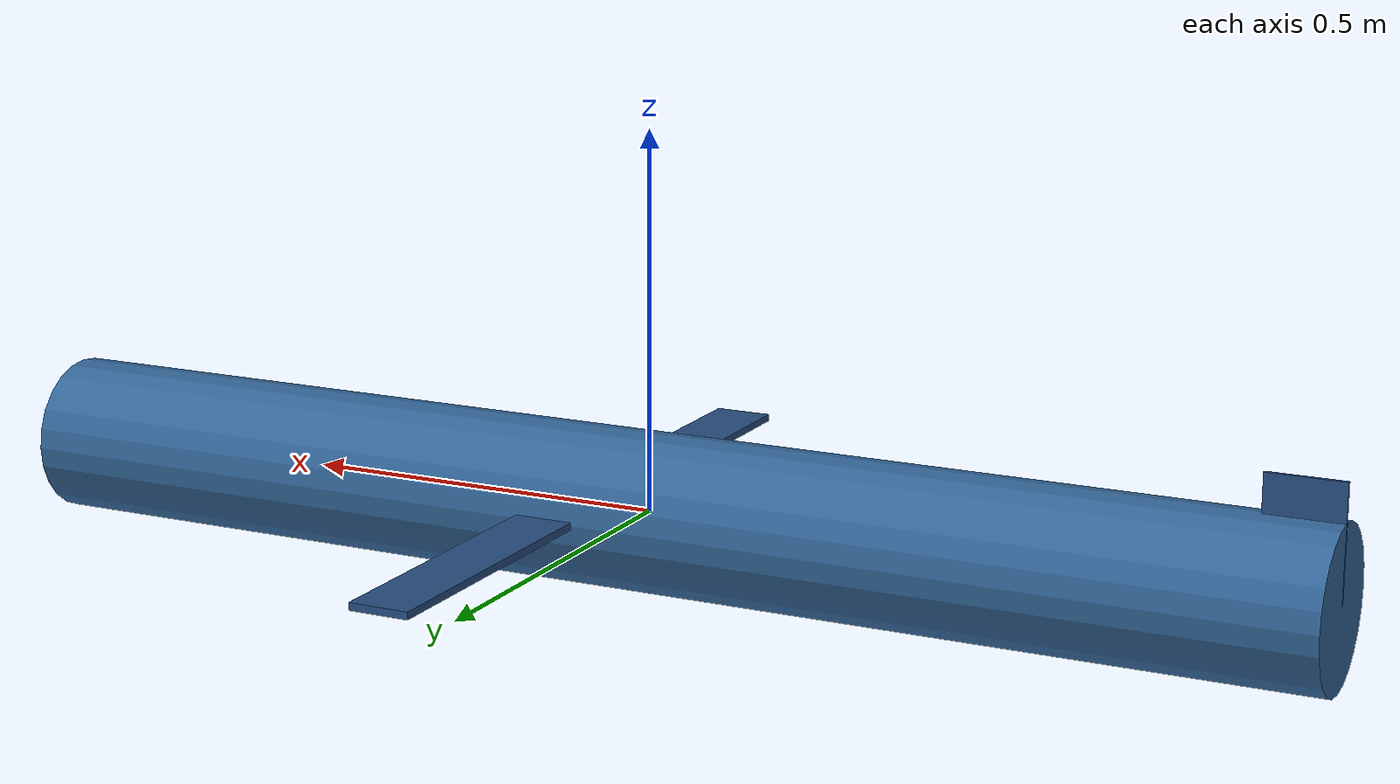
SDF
<?xml version="1.0" ?>
<sdf version="1.6">
<model name="tuba_glider">

  <pose>0 0 0 0 0 0</pose>
  <self_collide>false</self_collide>
  <static>false</static>

  <link name="hull_link">
    <pose>0 0 0 0 0 0</pose>

    <inertial>
      <!-- CoG 3 cm below geometric centre: CoB (at link origin) is above CoG,
           giving a restoring moment that resists both roll and pitch at rest. -->
      <pose>0 0 -0.03 0 0 0</pose>
      <mass>59.9</mass>
      <inertia>
        <ixx>16.3</ixx>
        <ixy>0.0</ixy>
        <ixz>0.0</ixz>
        <iyy>16.3</iyy>
        <iyz>0.0</iyz>
        <izz>0.330</izz>
      </inertia>
    </inertial>

    <!-- Visual hull: cylinder rotated 90° about Y so its length lies along X -->
    <visual name="hull_visual">
      <pose>0 0 0 0 1.5707963 0</pose>
      <geometry>
        <cylinder>
          <radius>0.105</radius>
          <length>1.8</length>
        </cylinder>
      </geometry>
      <material>
        <ambient>0.2 0.4 0.6 1.0</ambient>
        <diffuse>0.2 0.4 0.6 1.0</diffuse>
        <specular>0.3 0.3 0.3 1.0</specular>
      </material>
    </visual>

    <!-- Collision: must match visual geometry closely so that the
         BuoyancyEngine plugin computes the correct submerged volume. -->
    <collision name="hull_collision">
      <pose>0 0 0 0 1.5707963 0</pose>
      <geometry>
        <cylinder>
          <radius>0.105</radius>
          <length>1.8</length>
        </cylinder>
      </geometry>
    </collision>

    <!-- === IMU SENSOR ===
         Publishes gz.msgs.IMU:
           orientation (quaternion w.r.t. world), angular_velocity (rad/s),
           linear_acceleration (m/s², body frame)
    -->
    <sensor name="imu_sensor" type="imu">
      <always_on>true</always_on>
      <update_rate>100</update_rate>
      <topic>/model/tuba_glider/imu</topic>
      <imu>
        <angular_velocity>
          <x><noise type="gaussian"><mean>0</mean><stddev>0.0002</stddev></noise></x>
          <y><noise type="gaussian"><mean>0</mean><stddev>0.0002</stddev></noise></y>
          <z><noise type="gaussian"><mean>0</mean><stddev>0.0002</stddev></noise></z>
        </angular_velocity>
        <linear_acceleration>
          <x><noise type="gaussian"><mean>0</mean><stddev>0.017</stddev></noise></x>
          <y><noise type="gaussian"><mean>0</mean><stddev>0.017</stddev></noise></y>
          <z><noise type="gaussian"><mean>0</mean><stddev>0.017</stddev></noise></z>
        </linear_acceleration>
      </imu>
    </sensor>

    <!-- === ALTIMETER SENSOR for depth ===
         vertical_position = world z coordinate.
         depth_m = -vertical_position  (bridge applies this conversion).
    -->
    <sensor name="altimeter_sensor" type="altimeter">
      <always_on>true</always_on>
      <update_rate>10</update_rate>
      <topic>/model/tuba_glider/altimeter</topic>
      <altimeter>
        <vertical_position>
          <noise type="gaussian"><mean>0</mean><stddev>0.02</stddev></noise>
        </vertical_position>
        <vertical_velocity>
          <noise type="gaussian"><mean>0</mean><stddev>0.01</stddev></noise>
        </vertical_velocity>
      </altimeter>
    </sensor>

  </link>

  <link name="wing_port_link">
    <pose>0.1 0.305 0 0 0 0</pose>
    <inertial>
      <mass>0.2</mass>
      <!-- Box 0.08×0.40×0.01 m: Ixx=(1/12)*m*(y²+z²), etc. -->
      <inertia>
        <ixx>0.000267</ixx><ixy>0</ixy><ixz>0</ixz>
        <iyy>0.001068</iyy><iyz>0</iyz>
        <izz>0.001333</izz>
      </inertia>
    </inertial>
    <visual name="wing_port_visual">
      <geometry>
        <box><size>0.08 0.40 0.01</size></box>
      </geometry>
      <material>
        <ambient>0.15 0.3 0.5 1</ambient>
        <diffuse>0.15 0.3 0.5 1</diffuse>
        <specular>0.1 0.1 0.1 1</specular>
      </material>
    </visual>
    <collision name="wing_port_collision">
      <geometry>
        <box><size>0.08 0.40 0.01</size></box>
      </geometry>
    </collision>
  </link>

  <joint name="wing_port_joint" type="fixed">
    <parent>hull_link</parent>
    <child>wing_port_link</child>
  </joint>

  <!-- ===========================================================
       LINK 3: wing_stbd_link — starboard (right) wing, fixed
       =========================================================== -->
  <link name="wing_stbd_link">
    <pose>0.1 -0.305 0 0 0 0</pose>
    <inertial>
      <mass>0.2</mass>
      <inertia>
        <ixx>0.000267</ixx><ixy>0</ixy><ixz>0</ixz>
        <iyy>0.001068</iyy><iyz>0</iyz>
        <izz>0.001333</izz>
      </inertia>
    </inertial>
    <visual name="wing_stbd_visual">
      <geometry>
        <box><size>0.08 0.40 0.01</size></box>
      </geometry>
      <material>
        <ambient>0.15 0.3 0.5 1</ambient>
        <diffuse>0.15 0.3 0.5 1</diffuse>
        <specular>0.1 0.1 0.1 1</specular>
      </material>
    </visual>
    <collision name="wing_stbd_collision">
      <geometry>
        <box><size>0.08 0.40 0.01</size></box>
      </geometry>
    </collision>
  </link>

  <joint name="wing_stbd_joint" type="fixed">
    <parent>hull_link</parent>
    <child>wing_stbd_link</child>
  </joint>

  <link name="mass_shifter_link">
    <pose>0 0 0 0 0 0</pose>  <!-- initial position at hull CG -->
    <inertial>
      <mass>4.0</mass>
      <!-- Box 0.20×0.05×0.05 m -->
      <inertia>
        <ixx>0.001667</ixx><ixy>0</ixy><ixz>0</ixz>
        <iyy>0.014167</iyy><iyz>0</iyz>
        <izz>0.014167</izz>
      </inertia>
    </inertial>
    <visual name="mass_shifter_visual">
      <geometry>
        <box><size>0.20 0.05 0.05</size></box>
      </geometry>
      <material>
        <ambient>0.8 0.5 0.1 1</ambient>
        <diffuse>0.8 0.5 0.1 1</diffuse>
      </material>
    </visual>
    <!-- Small box: negligible contribution to buoyancy volume -->
    <collision name="mass_shifter_collision">
      <geometry>
        <box><size>0.20 0.05 0.05</size></box>
      </geometry>
    </collision>
  </link>

  <joint name="mass_shifter_joint" type="prismatic">
    <parent>hull_link</parent>
    <child>mass_shifter_link</child>
    <axis>
      <xyz>1 0 0</xyz>
      <use_parent_model_frame>true</use_parent_model_frame>
      <limit>
        <lower>-0.15</lower>       <!-- aft limit -->
        <upper>0.15</upper>        <!-- fore limit -->
        <effort>10.0</effort>
        <velocity>0.05</velocity>  <!-- 5 cm/s max actuator speed -->
      </limit>
      <dynamics>
        <damping>5.0</damping>
        <friction>0.5</friction>
      </dynamics>
    </axis>
  </joint>

  <link name="tail_fin_link">
    <pose>-0.85 0 0.08 0 0 0</pose>  <!-- at tail, slightly above centreline -->
    <inertial>
      <mass>0.1</mass>
      <inertia>
        <ixx>0.0000083</ixx><ixy>0</ixy><ixz>0</ixz>
        <iyy>0.000133</iyy><iyz>0</iyz>
        <izz>0.000133</izz>
      </inertia>
    </inertial>
    <visual name="tail_fin_visual">
      <geometry>
        <box><size>0.10 0.005 0.15</size></box>
      </geometry>
      <material>
        <ambient>0.15 0.3 0.5 1</ambient>
        <diffuse>0.15 0.3 0.5 1</diffuse>
      </material>
    </visual>
    <collision name="tail_fin_collision">
      <geometry>
        <box><size>0.10 0.005 0.15</size></box>
      </geometry>
    </collision>
  </link>

  <joint name="tail_fin_joint" type="fixed">
    <parent>hull_link</parent>
    <child>tail_fin_link</child>
  </joint>

  <plugin filename="gz-sim-buoyancy-engine-system"
          name="gz::sim::systems::BuoyancyEngine">
    <link_name>hull_link</link_name>
    <namespace>tuba_glider</namespace>
    <min_volume>0.001</min_volume>
    <neutral_volume>0.002</neutral_volume>
    <default_volume>0.002</default_volume>
    <max_volume>0.003</max_volume>
    <max_inflation_rate>0.0001</max_inflation_rate>  <!-- 0.1 L/s = 6 L/min -->
    <fluid_density>1025</fluid_density>
  </plugin>

  <plugin filename="gz-sim-joint-position-controller-system"
          name="gz::sim::systems::JointPositionController">
    <joint_name>mass_shifter_joint</joint_name>
    <p_gain>15.0</p_gain>
    <i_gain>0.5</i_gain>
    <d_gain>2.0</d_gain>
    <i_max>5.0</i_max>
    <i_min>-5.0</i_min>
    <cmd_max>10.0</cmd_max>
    <cmd_min>-10.0</cmd_min>
  </plugin>

  <plugin filename="gz-sim-hydrodynamics-system"
          name="gz::sim::systems::Hydrodynamics">
    <link_name>hull_link</link_name>
    <!-- Added mass -->
    <xDotU>-2.0</xDotU>
    <yDotV>-40.0</yDotV>
    <zDotW>-40.0</zDotW>
    <kDotP>0.0</kDotP>
    <mDotQ>-4.0</mDotQ>
    <nDotR>-4.0</nDotR>
    <!-- Linear drag (small; quadratic dominates at glider speeds) -->
    <xU>0.0</xU>
    <yV>0.0</yV>
    <zW>0.0</zW>
    <kP>0.0</kP>
    <mQ>0.0</mQ>
    <nR>0.0</nR>
    <!-- Quadratic drag -->
    <xUabsU>-3.0</xUabsU>
    <yVabsV>-150.0</yVabsV>
    <zWabsW>-150.0</zWabsW>
    <kPabsP>-0.5</kPabsP>
    <mQabsQ>-25.0</mQabsQ>
    <nRabsR>-25.0</nRabsR>
  </plugin>

  <plugin filename="gz-sim-lift-drag-system"
          name="gz::sim::systems::LiftDrag">
    <air_density>1025</air_density>
    <cla>4.0</cla>
    <cla_stall>-0.5</cla_stall>
    <cda>0.08</cda>
    <cda_stall>0.5</cda_stall>
    <alpha_stall>0.17</alpha_stall>  <!-- ~10° stall angle -->
    <a0>0.0</a0>                     <!-- symmetric foil -->
    <area>0.032</area>
    <forward>1 0 0</forward>         <!-- chord direction in body frame -->
    <upward>0 0 1</upward>           <!-- lift direction (vertical) -->
    <link_name>wing_port_link</link_name>
    <cp>0 0 0</cp>                   <!-- centre of pressure at link origin -->
  </plugin>

  <!-- ===========================================================
       PLUGIN 5: LiftDrag on starboard wing
       =========================================================== -->
  <plugin filename="gz-sim-lift-drag-system"
          name="gz::sim::systems::LiftDrag">
    <air_density>1025</air_density>
    <cla>4.0</cla>
    <cla_stall>-0.5</cla_stall>
    <cda>0.08</cda>
    <cda_stall>0.5</cda_stall>
    <alpha_stall>0.17</alpha_stall>
    <a0>0.0</a0>
    <area>0.032</area>
    <forward>1 0 0</forward>
    <upward>0 0 1</upward>
    <link_name>wing_stbd_link</link_name>
    <cp>0 0 0</cp>
  </plugin>

  <plugin filename="gz-sim-pose-publisher-system"
          name="gz::sim::systems::PosePublisher">
    <publish_link_pose>true</publish_link_pose>
    <publish_collision_pose>false</publish_collision_pose>
    <publish_visual_pose>false</publish_visual_pose>
    <publish_nested_model_pose>false</publish_nested_model_pose>
    <publish_model_pose>false</publish_model_pose>
    <update_frequency>10</update_frequency>
  </plugin>

  <plugin filename="gz-sim-joint-state-publisher-system"
          name="gz::sim::systems::JointStatePublisher"/>

</model>
</sdf>
